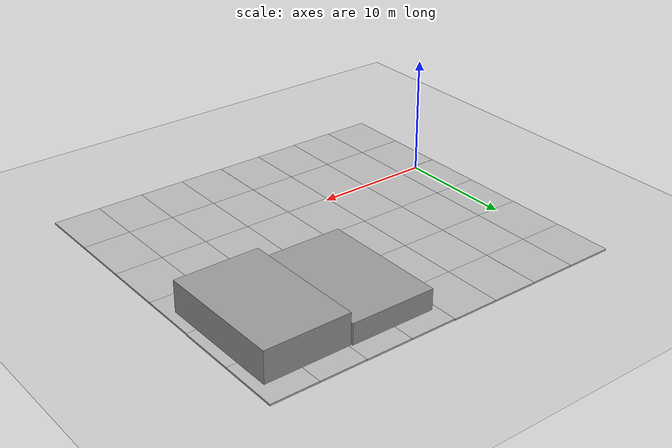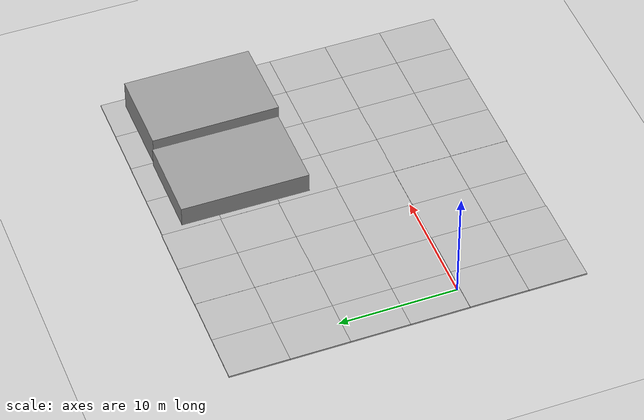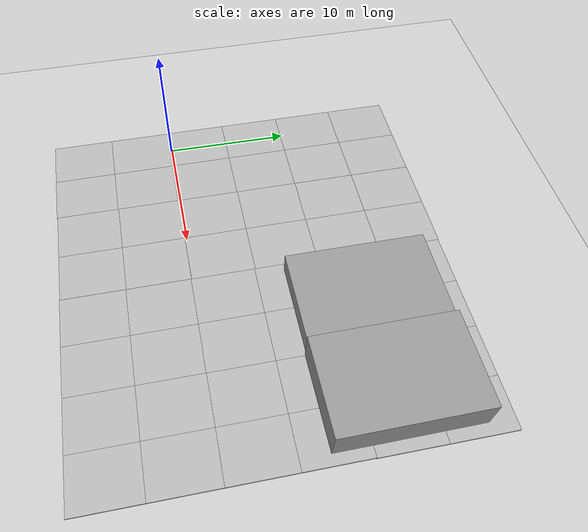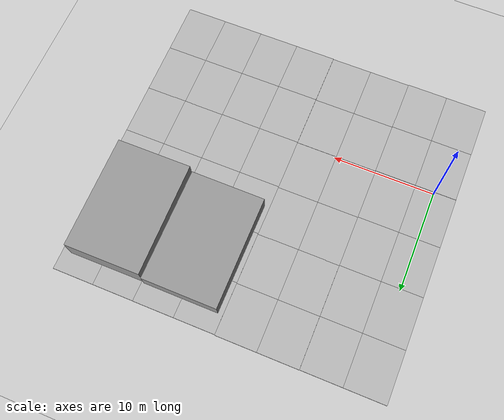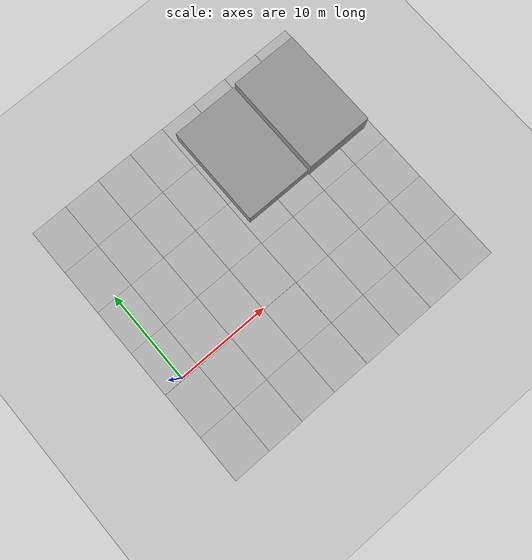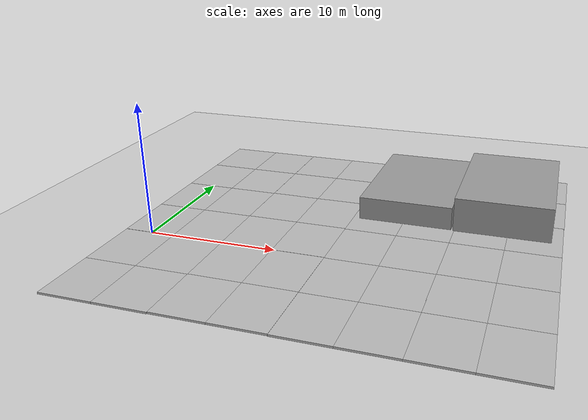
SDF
<sdf version="1.7">
 <world name="default">
  <light name="sun" type="directional">
   <pose>0 0 10 0 -0 0</pose>
   <diffuse>0.8 0.8 0.8 1</diffuse>
   <specular>0.1 0.1 0.1 1</specular>
   <attenuation>
    <range>1000</range>
    <constant>0.9</constant>
    <linear>0.01</linear>
    <quadratic>0.001</quadratic>
   </attenuation>
   <direction>-0.5 0.5 -1</direction>
   <spot><inner_angle>0</inner_angle><outer_angle>0</outer_angle><falloff>0</falloff></spot>
  </light>
  <model name="ground_plane">
   <static>1</static>
   <link name="link">
    <collision name="collision">
     <geometry><plane><normal>0 0 1</normal><size>100 100</size></plane></geometry>
     <surface><friction><ode><mu>100</mu><mu2>50</mu2></ode></friction></surface>
    </collision>
    <visual name="visual">
     <cast_shadows>0</cast_shadows>
     <geometry><plane><normal>0 0 1</normal><size>100 100</size></plane></geometry>
     <material>
      <script><uri>file://media/materials/scripts/gazebo.material</uri><name>Gazebo/Grey</name></script>
     </material>
    </visual>
   </link>
  </model>
  <gravity>0 0 -9.8</gravity>
  <magnetic_field>6e-06 2.3e-05 -4.2e-05</magnetic_field>
  <atmosphere type="adiabatic"/>
  <physics name="default_physics" default="0" type="ode">
   <max_step_size>0.001</max_step_size>
   <real_time_factor>1</real_time_factor>
   <real_time_update_rate>1000</real_time_update_rate>
  </physics>
  <scene><ambient>0.4 0.4 0.4 1</ambient><background>0.7 0.7 0.7 1</background><shadows>1</shadows></scene>
  <spherical_coordinates>
   <surface_model>EARTH_WGS84</surface_model>
   <latitude_deg>0</latitude_deg>
   <longitude_deg>0</longitude_deg>
   <elevation>0</elevation>
   <heading_deg>0</heading_deg>
  </spherical_coordinates>
  <model name="mud_box">
   <static>1</static>
   <link name="link">
    <collision name="collision"><geometry><box><size>8 10 0.2</size></box></geometry></collision>
    <visual name="visual_1">
     <pose>-2 2.5 0 0 -0 0</pose>
     <cast_shadows>0</cast_shadows>
     <geometry><box><size>4 5 0.2</size></box></geometry>
     <material>
      <script>
       <uri>model://mud_box/materials/scripts</uri>
       <uri>model://mud_box/materials/textures</uri>
       <name>vrc/mud</name>
      </script>
     </material>
    </visual>
    <visual name="visual_2">
     <pose>2 2.5 0 0 -0 0</pose>
     <cast_shadows>0</cast_shadows>
     <geometry><box><size>4 5 0.2</size></box></geometry>
     <material>
      <script>
       <uri>model://mud_box/materials/scripts</uri>
       <uri>model://mud_box/materials/textures</uri>
       <name>vrc/mud</name>
      </script>
     </material>
    </visual>
    <visual name="visual_3">
     <pose>2 -2.5 0 0 -0 0</pose>
     <cast_shadows>0</cast_shadows>
     <geometry><box><size>4 5 0.2</size></box></geometry>
     <material>
      <script>
       <uri>model://mud_box/materials/scripts</uri>
       <uri>model://mud_box/materials/textures</uri>
       <name>vrc/mud</name>
      </script>
     </material>
    </visual>
    <visual name="visual_4">
     <pose>-2 -2.5 0 0 -0 0</pose>
     <cast_shadows>0</cast_shadows>
     <geometry><box><size>4 5 0.2</size></box></geometry>
     <material>
      <script>
       <uri>model://mud_box/materials/scripts</uri>
       <uri>model://mud_box/materials/textures</uri>
       <name>vrc/mud</name>
      </script>
     </material>
    </visual>
   </link>
   <pose>9.86832 14.8407 0 0 -0 0</pose>
  </model>
  <model name="mud_box_0">
   <static>1</static>
   <link name="link">
    <collision name="collision"><geometry><box><size>8 10 0.2</size></box></geometry></collision>
    <visual name="visual_1">
     <pose>-2 2.5 0 0 -0 0</pose>
     <cast_shadows>0</cast_shadows>
     <geometry><box><size>4 5 0.2</size></box></geometry>
     <material>
      <script>
       <uri>model://mud_box/materials/scripts</uri>
       <uri>model://mud_box/materials/textures</uri>
       <name>vrc/mud</name>
      </script>
     </material>
    </visual>
    <visual name="visual_2">
     <pose>2 2.5 0 0 -0 0</pose>
     <cast_shadows>0</cast_shadows>
     <geometry><box><size>4 5 0.2</size></box></geometry>
     <material>
      <script>
       <uri>model://mud_box/materials/scripts</uri>
       <uri>model://mud_box/materials/textures</uri>
       <name>vrc/mud</name>
      </script>
     </material>
    </visual>
    <visual name="visual_3">
     <pose>2 -2.5 0 0 -0 0</pose>
     <cast_shadows>0</cast_shadows>
     <geometry><box><size>4 5 0.2</size></box></geometry>
     <material>
      <script>
       <uri>model://mud_box/materials/scripts</uri>
       <uri>model://mud_box/materials/textures</uri>
       <name>vrc/mud</name>
      </script>
     </material>
    </visual>
    <visual name="visual_4">
     <pose>-2 -2.5 0 0 -0 0</pose>
     <cast_shadows>0</cast_shadows>
     <geometry><box><size>4 5 0.2</size></box></geometry>
     <material>
      <script>
       <uri>model://mud_box/materials/scripts</uri>
       <uri>model://mud_box/materials/textures</uri>
       <name>vrc/mud</name>
      </script>
     </material>
    </visual>
   </link>
   <pose>1.86767 4.83104 0 0 -0 0</pose>
  </model>
  <model name="mud_box_1">
   <static>1</static>
   <link name="link">
    <collision name="collision"><geometry><box><size>8 10 0.2</size></box></geometry></collision>
    <visual name="visual_1">
     <pose>-2 2.5 0 0 -0 0</pose>
     <cast_shadows>0</cast_shadows>
     <geometry><box><size>4 5 0.2</size></box></geometry>
     <material>
      <script>
       <uri>model://mud_box/materials/scripts</uri>
       <uri>model://mud_box/materials/textures</uri>
       <name>vrc/mud</name>
      </script>
     </material>
    </visual>
    <visual name="visual_2">
     <pose>2 2.5 0 0 -0 0</pose>
     <cast_shadows>0</cast_shadows>
     <geometry><box><size>4 5 0.2</size></box></geometry>
     <material>
      <script>
       <uri>model://mud_box/materials/scripts</uri>
       <uri>model://mud_box/materials/textures</uri>
       <name>vrc/mud</name>
      </script>
     </material>
    </visual>
    <visual name="visual_3">
     <pose>2 -2.5 0 0 -0 0</pose>
     <cast_shadows>0</cast_shadows>
     <geometry><box><size>4 5 0.2</size></box></geometry>
     <material>
      <script>
       <uri>model://mud_box/materials/scripts</uri>
       <uri>model://mud_box/materials/textures</uri>
       <name>vrc/mud</name>
      </script>
     </material>
    </visual>
    <visual name="visual_4">
     <pose>-2 -2.5 0 0 -0 0</pose>
     <cast_shadows>0</cast_shadows>
     <geometry><box><size>4 5 0.2</size></box></geometry>
     <material>
      <script>
       <uri>model://mud_box/materials/scripts</uri>
       <uri>model://mud_box/materials/textures</uri>
       <name>vrc/mud</name>
      </script>
     </material>
    </visual>
   </link>
   <pose>25.8304 -5.18145 0 0 -0 0</pose>
  </model>
  <model name="mud_box_2">
   <static>1</static>
   <link name="link">
    <collision name="collision"><geometry><box><size>8 10 0.2</size></box></geometry></collision>
    <visual name="visual_1">
     <pose>-2 2.5 0 0 -0 0</pose>
     <cast_shadows>0</cast_shadows>
     <geometry><box><size>4 5 0.2</size></box></geometry>
     <material>
      <script>
       <uri>model://mud_box/materials/scripts</uri>
       <uri>model://mud_box/materials/textures</uri>
       <name>vrc/mud</name>
      </script>
     </material>
    </visual>
    <visual name="visual_2">
     <pose>2 2.5 0 0 -0 0</pose>
     <cast_shadows>0</cast_shadows>
     <geometry><box><size>4 5 0.2</size></box></geometry>
     <material>
      <script>
       <uri>model://mud_box/materials/scripts</uri>
       <uri>model://mud_box/materials/textures</uri>
       <name>vrc/mud</name>
      </script>
     </material>
    </visual>
    <visual name="visual_3">
     <pose>2 -2.5 0 0 -0 0</pose>
     <cast_shadows>0</cast_shadows>
     <geometry><box><size>4 5 0.2</size></box></geometry>
     <material>
      <script>
       <uri>model://mud_box/materials/scripts</uri>
       <uri>model://mud_box/materials/textures</uri>
       <name>vrc/mud</name>
      </script>
     </material>
    </visual>
    <visual name="visual_4">
     <pose>-2 -2.5 0 0 -0 0</pose>
     <cast_shadows>0</cast_shadows>
     <geometry><box><size>4 5 0.2</size></box></geometry>
     <material>
      <script>
       <uri>model://mud_box/materials/scripts</uri>
       <uri>model://mud_box/materials/textures</uri>
       <name>vrc/mud</name>
      </script>
     </material>
    </visual>
   </link>
   <pose>1.88393 -5.18703 0 0 -0 0</pose>
  </model>
  <model name="mud_box_0_clone">
   <static>1</static>
   <link name="link">
    <collision name="collision"><geometry><box><size>8 10 0.2</size></box></geometry></collision>
    <visual name="visual_1">
     <pose>-2 2.5 0 0 -0 0</pose>
     <cast_shadows>0</cast_shadows>
     <geometry><box><size>4 5 0.2</size></box></geometry>
     <material>
      <script>
       <uri>model://mud_box/materials/scripts</uri>
       <uri>model://mud_box/materials/textures</uri>
       <name>vrc/mud</name>
      </script>
     </material>
    </visual>
    <visual name="visual_2">
     <pose>2 2.5 0 0 -0 0</pose>
     <cast_shadows>0</cast_shadows>
     <geometry><box><size>4 5 0.2</size></box></geometry>
     <material>
      <script>
       <uri>model://mud_box/materials/scripts</uri>
       <uri>model://mud_box/materials/textures</uri>
       <name>vrc/mud</name>
      </script>
     </material>
    </visual>
    <visual name="visual_3">
     <pose>2 -2.5 0 0 -0 0</pose>
     <cast_shadows>0</cast_shadows>
     <geometry><box><size>4 5 0.2</size></box></geometry>
     <material>
      <script>
       <uri>model://mud_box/materials/scripts</uri>
       <uri>model://mud_box/materials/textures</uri>
       <name>vrc/mud</name>
      </script>
     </material>
    </visual>
    <visual name="visual_4">
     <pose>-2 -2.5 0 0 -0 0</pose>
     <cast_shadows>0</cast_shadows>
     <geometry><box><size>4 5 0.2</size></box></geometry>
     <material>
      <script>
       <uri>model://mud_box/materials/scripts</uri>
       <uri>model://mud_box/materials/textures</uri>
       <name>vrc/mud</name>
      </script>
     </material>
    </visual>
   </link>
   <pose>9.85757 -5.14216 0 0 -0 0</pose>
  </model>
  <model name="mud_box_0_clone_clone">
   <static>1</static>
   <link name="link">
    <collision name="collision"><geometry><box><size>8 10 0.2</size></box></geometry></collision>
    <visual name="visual_1">
     <pose>-2 2.5 0 0 -0 0</pose>
     <cast_shadows>0</cast_shadows>
     <geometry><box><size>4 5 0.2</size></box></geometry>
     <material>
      <script>
       <uri>model://mud_box/materials/scripts</uri>
       <uri>model://mud_box/materials/textures</uri>
       <name>vrc/mud</name>
      </script>
     </material>
    </visual>
    <visual name="visual_2">
     <pose>2 2.5 0 0 -0 0</pose>
     <cast_shadows>0</cast_shadows>
     <geometry><box><size>4 5 0.2</size></box></geometry>
     <material>
      <script>
       <uri>model://mud_box/materials/scripts</uri>
       <uri>model://mud_box/materials/textures</uri>
       <name>vrc/mud</name>
      </script>
     </material>
    </visual>
    <visual name="visual_3">
     <pose>2 -2.5 0 0 -0 0</pose>
     <cast_shadows>0</cast_shadows>
     <geometry><box><size>4 5 0.2</size></box></geometry>
     <material>
      <script>
       <uri>model://mud_box/materials/scripts</uri>
       <uri>model://mud_box/materials/textures</uri>
       <name>vrc/mud</name>
      </script>
     </material>
    </visual>
    <visual name="visual_4">
     <pose>-2 -2.5 0 0 -0 0</pose>
     <cast_shadows>0</cast_shadows>
     <geometry><box><size>4 5 0.2</size></box></geometry>
     <material>
      <script>
       <uri>model://mud_box/materials/scripts</uri>
       <uri>model://mud_box/materials/textures</uri>
       <name>vrc/mud</name>
      </script>
     </material>
    </visual>
   </link>
   <pose>17.8643 -5.17973 0 0 -0 0</pose>
  </model>
  <model name="mud_box_0_clone_clone_0">
   <static>1</static>
   <link name="link">
    <collision name="collision"><geometry><box><size>8 10 0.2</size></box></geometry></collision>
    <visual name="visual_1">
     <pose>-2 2.5 0 0 -0 0</pose>
     <cast_shadows>0</cast_shadows>
     <geometry><box><size>4 5 0.2</size></box></geometry>
     <material>
      <script>
       <uri>model://mud_box/materials/scripts</uri>
       <uri>model://mud_box/materials/textures</uri>
       <name>vrc/mud</name>
      </script>
     </material>
    </visual>
    <visual name="visual_2">
     <pose>2 2.5 0 0 -0 0</pose>
     <cast_shadows>0</cast_shadows>
     <geometry><box><size>4 5 0.2</size></box></geometry>
     <material>
      <script>
       <uri>model://mud_box/materials/scripts</uri>
       <uri>model://mud_box/materials/textures</uri>
       <name>vrc/mud</name>
      </script>
     </material>
    </visual>
    <visual name="visual_3">
     <pose>2 -2.5 0 0 -0 0</pose>
     <cast_shadows>0</cast_shadows>
     <geometry><box><size>4 5 0.2</size></box></geometry>
     <material>
      <script>
       <uri>model://mud_box/materials/scripts</uri>
       <uri>model://mud_box/materials/textures</uri>
       <name>vrc/mud</name>
      </script>
     </material>
    </visual>
    <visual name="visual_4">
     <pose>-2 -2.5 0 0 -0 0</pose>
     <cast_shadows>0</cast_shadows>
     <geometry><box><size>4 5 0.2</size></box></geometry>
     <material>
      <script>
       <uri>model://mud_box/materials/scripts</uri>
       <uri>model://mud_box/materials/textures</uri>
       <name>vrc/mud</name>
      </script>
     </material>
    </visual>
   </link>
   <pose>17.8432 4.79546 0 0 -0 0</pose>
  </model>
  <model name="mud_box_0_clone_clone_1">
   <static>1</static>
   <link name="link">
    <collision name="collision"><geometry><box><size>8 10 0.2</size></box></geometry></collision>
    <visual name="visual_1">
     <pose>-2 2.5 0 0 -0 0</pose>
     <cast_shadows>0</cast_shadows>
     <geometry><box><size>4 5 0.2</size></box></geometry>
     <material>
      <script>
       <uri>model://mud_box/materials/scripts</uri>
       <uri>model://mud_box/materials/textures</uri>
       <name>vrc/mud</name>
      </script>
     </material>
    </visual>
    <visual name="visual_2">
     <pose>2 2.5 0 0 -0 0</pose>
     <cast_shadows>0</cast_shadows>
     <geometry><box><size>4 5 0.2</size></box></geometry>
     <material>
      <script>
       <uri>model://mud_box/materials/scripts</uri>
       <uri>model://mud_box/materials/textures</uri>
       <name>vrc/mud</name>
      </script>
     </material>
    </visual>
    <visual name="visual_3">
     <pose>2 -2.5 0 0 -0 0</pose>
     <cast_shadows>0</cast_shadows>
     <geometry><box><size>4 5 0.2</size></box></geometry>
     <material>
      <script>
       <uri>model://mud_box/materials/scripts</uri>
       <uri>model://mud_box/materials/textures</uri>
       <name>vrc/mud</name>
      </script>
     </material>
    </visual>
    <visual name="visual_4">
     <pose>-2 -2.5 0 0 -0 0</pose>
     <cast_shadows>0</cast_shadows>
     <geometry><box><size>4 5 0.2</size></box></geometry>
     <material>
      <script>
       <uri>model://mud_box/materials/scripts</uri>
       <uri>model://mud_box/materials/textures</uri>
       <name>vrc/mud</name>
      </script>
     </material>
    </visual>
   </link>
   <pose>25.8322 4.79818 0 0 -0 0</pose>
  </model>
  <model name="mud_box_0_clone_clone_2">
   <static>1</static>
   <link name="link">
    <collision name="collision"><geometry><box><size>8 10 0.2</size></box></geometry></collision>
    <visual name="visual_1">
     <pose>-2 2.5 0 0 -0 0</pose>
     <cast_shadows>0</cast_shadows>
     <geometry><box><size>4 5 0.2</size></box></geometry>
     <material>
      <script>
       <uri>model://mud_box/materials/scripts</uri>
       <uri>model://mud_box/materials/textures</uri>
       <name>vrc/mud</name>
      </script>
     </material>
    </visual>
    <visual name="visual_2">
     <pose>2 2.5 0 0 -0 0</pose>
     <cast_shadows>0</cast_shadows>
     <geometry><box><size>4 5 0.2</size></box></geometry>
     <material>
      <script>
       <uri>model://mud_box/materials/scripts</uri>
       <uri>model://mud_box/materials/textures</uri>
       <name>vrc/mud</name>
      </script>
     </material>
    </visual>
    <visual name="visual_3">
     <pose>2 -2.5 0 0 -0 0</pose>
     <cast_shadows>0</cast_shadows>
     <geometry><box><size>4 5 0.2</size></box></geometry>
     <material>
      <script>
       <uri>model://mud_box/materials/scripts</uri>
       <uri>model://mud_box/materials/textures</uri>
       <name>vrc/mud</name>
      </script>
     </material>
    </visual>
    <visual name="visual_4">
     <pose>-2 -2.5 0 0 -0 0</pose>
     <cast_shadows>0</cast_shadows>
     <geometry><box><size>4 5 0.2</size></box></geometry>
     <material>
      <script>
       <uri>model://mud_box/materials/scripts</uri>
       <uri>model://mud_box/materials/textures</uri>
       <name>vrc/mud</name>
      </script>
     </material>
    </visual>
   </link>
   <pose>1.86503 14.8262 0 0 -0 0</pose>
  </model>
  <model name="mud_box_4">
   <static>1</static>
   <link name="link">
    <collision name="collision"><geometry><box><size>8 10 0.2</size></box></geometry></collision>
    <visual name="visual_1">
     <pose>-2 2.5 0 0 -0 0</pose>
     <cast_shadows>0</cast_shadows>
     <geometry><box><size>4 5 0.2</size></box></geometry>
     <material>
      <script>
       <uri>model://mud_box/materials/scripts</uri>
       <uri>model://mud_box/materials/textures</uri>
       <name>vrc/mud</name>
      </script>
     </material>
    </visual>
    <visual name="visual_2">
     <pose>2 2.5 0 0 -0 0</pose>
     <cast_shadows>0</cast_shadows>
     <geometry><box><size>4 5 0.2</size></box></geometry>
     <material>
      <script>
       <uri>model://mud_box/materials/scripts</uri>
       <uri>model://mud_box/materials/textures</uri>
       <name>vrc/mud</name>
      </script>
     </material>
    </visual>
    <visual name="visual_3">
     <pose>2 -2.5 0 0 -0 0</pose>
     <cast_shadows>0</cast_shadows>
     <geometry><box><size>4 5 0.2</size></box></geometry>
     <material>
      <script>
       <uri>model://mud_box/materials/scripts</uri>
       <uri>model://mud_box/materials/textures</uri>
       <name>vrc/mud</name>
      </script>
     </material>
    </visual>
    <visual name="visual_4">
     <pose>-2 -2.5 0 0 -0 0</pose>
     <cast_shadows>0</cast_shadows>
     <geometry><box><size>4 5 0.2</size></box></geometry>
     <material>
      <script>
       <uri>model://mud_box/materials/scripts</uri>
       <uri>model://mud_box/materials/textures</uri>
       <name>vrc/mud</name>
      </script>
     </material>
    </visual>
   </link>
   <pose>9.85969 4.86644 0 0 -0 0</pose>
  </model>
  <model name="mud_box_3">
   <static>1</static>
   <link name="link">
    <collision name="collision"><geometry><box><size>8 10 0.2</size></box></geometry></collision>
    <visual name="visual_1">
     <pose>-2 2.5 0 0 -0 0</pose>
     <cast_shadows>0</cast_shadows>
     <geometry><box><size>4 5 0.2</size></box></geometry>
     <material>
      <script>
       <uri>model://mud_box/materials/scripts</uri>
       <uri>model://mud_box/materials/textures</uri>
       <name>vrc/mud</name>
      </script>
     </material>
    </visual>
    <visual name="visual_2">
     <pose>2 2.5 0 0 -0 0</pose>
     <cast_shadows>0</cast_shadows>
     <geometry><box><size>4 5 0.2</size></box></geometry>
     <material>
      <script>
       <uri>model://mud_box/materials/scripts</uri>
       <uri>model://mud_box/materials/textures</uri>
       <name>vrc/mud</name>
      </script>
     </material>
    </visual>
    <visual name="visual_3">
     <pose>2 -2.5 0 0 -0 0</pose>
     <cast_shadows>0</cast_shadows>
     <geometry><box><size>4 5 0.2</size></box></geometry>
     <material>
      <script>
       <uri>model://mud_box/materials/scripts</uri>
       <uri>model://mud_box/materials/textures</uri>
       <name>vrc/mud</name>
      </script>
     </material>
    </visual>
    <visual name="visual_4">
     <pose>-2 -2.5 0 0 -0 0</pose>
     <cast_shadows>0</cast_shadows>
     <geometry><box><size>4 5 0.2</size></box></geometry>
     <material>
      <script>
       <uri>model://mud_box/materials/scripts</uri>
       <uri>model://mud_box/materials/textures</uri>
       <name>vrc/mud</name>
      </script>
     </material>
    </visual>
   </link>
   <pose>17.8698 14.7961 0 0 -0 0</pose>
  </model>
  <model name="mud_box_5">
   <static>1</static>
   <link name="link">
    <collision name="collision"><geometry><box><size>8 10 0.2</size></box></geometry></collision>
    <visual name="visual_1">
     <pose>-2 2.5 0 0 -0 0</pose>
     <cast_shadows>0</cast_shadows>
     <geometry><box><size>4 5 0.2</size></box></geometry>
     <material>
      <script>
       <uri>model://mud_box/materials/scripts</uri>
       <uri>model://mud_box/materials/textures</uri>
       <name>vrc/mud</name>
      </script>
     </material>
    </visual>
    <visual name="visual_2">
     <pose>2 2.5 0 0 -0 0</pose>
     <cast_shadows>0</cast_shadows>
     <geometry><box><size>4 5 0.2</size></box></geometry>
     <material>
      <script>
       <uri>model://mud_box/materials/scripts</uri>
       <uri>model://mud_box/materials/textures</uri>
       <name>vrc/mud</name>
      </script>
     </material>
    </visual>
    <visual name="visual_3">
     <pose>2 -2.5 0 0 -0 0</pose>
     <cast_shadows>0</cast_shadows>
     <geometry><box><size>4 5 0.2</size></box></geometry>
     <material>
      <script>
       <uri>model://mud_box/materials/scripts</uri>
       <uri>model://mud_box/materials/textures</uri>
       <name>vrc/mud</name>
      </script>
     </material>
    </visual>
    <visual name="visual_4">
     <pose>-2 -2.5 0 0 -0 0</pose>
     <cast_shadows>0</cast_shadows>
     <geometry><box><size>4 5 0.2</size></box></geometry>
     <material>
      <script>
       <uri>model://mud_box/materials/scripts</uri>
       <uri>model://mud_box/materials/textures</uri>
       <name>vrc/mud</name>
      </script>
     </material>
    </visual>
   </link>
   <pose>25.863 14.7854 0 0 -0 0</pose>
  </model>
  <model name="unit_box">
   <pose>25.3573 12.4023 1.42919 0 2e-06 0.004255</pose>
   <link name="link">
    <inertial>
     <mass>1</mass>
     <inertia>
      <ixx>0.166667</ixx>
      <ixy>0</ixy>
      <ixz>0</ixz>
      <iyy>0.166667</iyy>
      <iyz>0</iyz>
      <izz>0.166667</izz>
     </inertia>
    </inertial>
    <collision name="collision"><geometry><box><size>7.27201 10.9137 2.65839</size></box></geometry></collision>
    <visual name="visual">
     <geometry><box><size>7.27201 10.9137 2.65839</size></box></geometry>
     <material>
      <script><name>Gazebo/Grey</name><uri>file://media/materials/scripts/gazebo.material</uri></script>
     </material>
    </visual>
   </link>
  </model>
  <model name="unit_box_clone">
   <pose>17.976 12.4953 0.989574 -4.9e-05 1.8e-05 -0.002199</pose>
   <link name="link">
    <inertial>
     <mass>1</mass>
     <inertia>
      <ixx>0.166667</ixx>
      <ixy>0</ixy>
      <ixz>0</ixz>
      <iyy>0.166667</iyy>
      <iyz>0</iyz>
      <izz>0.166667</izz>
     </inertia>
    </inertial>
    <collision name="collision"><geometry><box><size>7.27201 10.9137 1.77955</size></box></geometry></collision>
    <visual name="visual">
     <geometry><box><size>7.27201 10.9137 1.77955</size></box></geometry>
     <material>
      <script><name>Gazebo/Grey</name><uri>file://media/materials/scripts/gazebo.material</uri></script>
     </material>
    </visual>
   </link>
  </model>
 </world>
</sdf>
